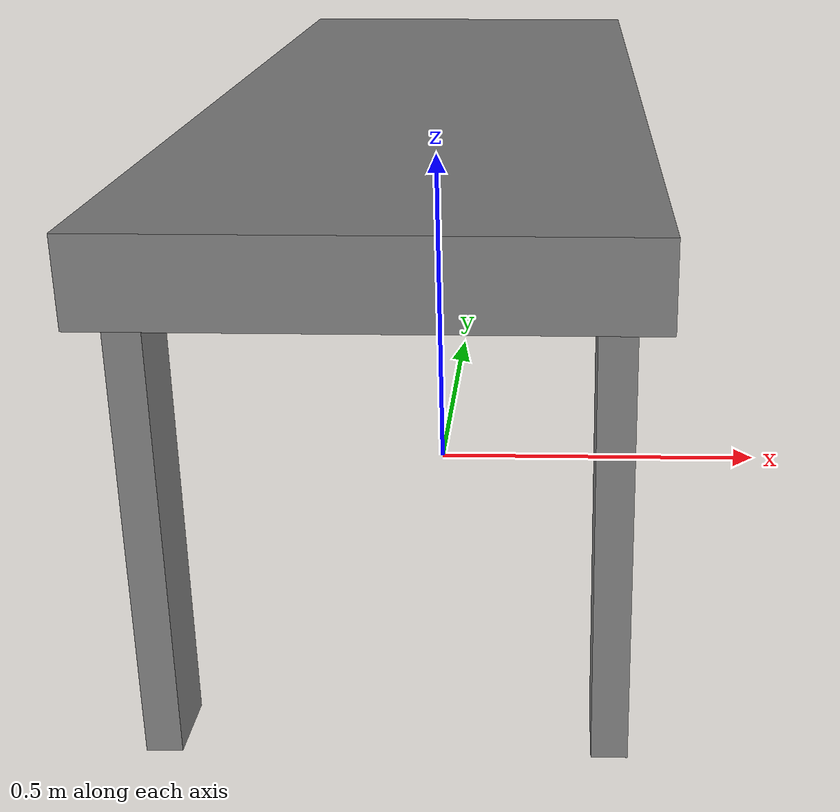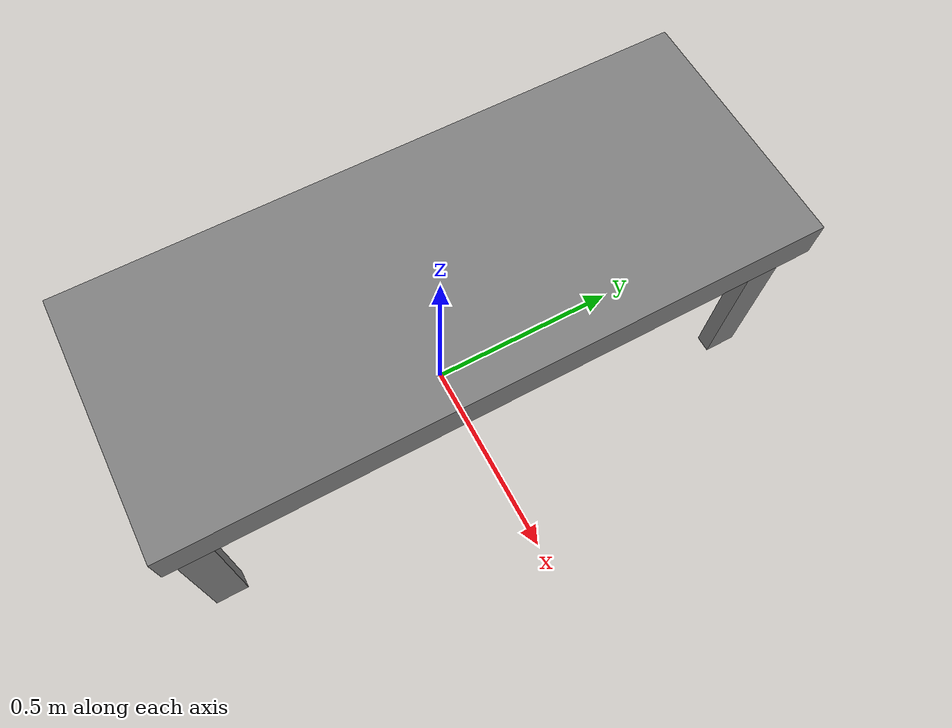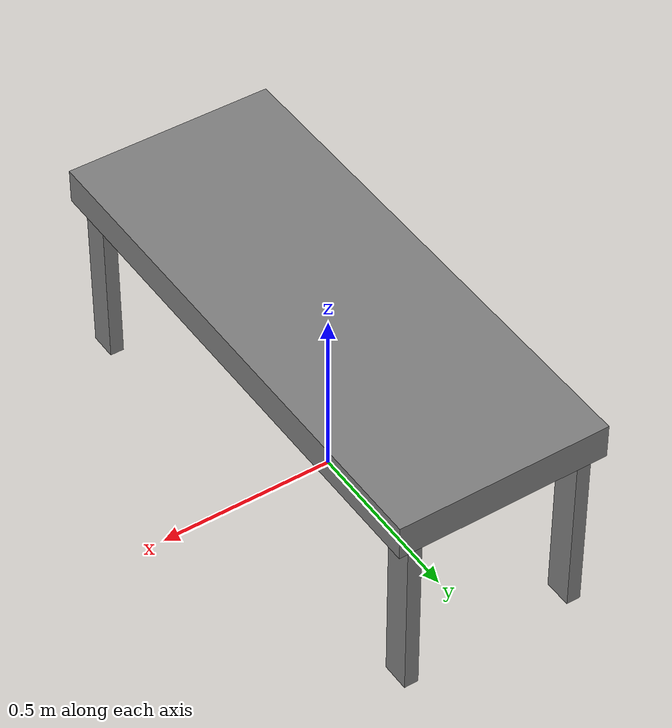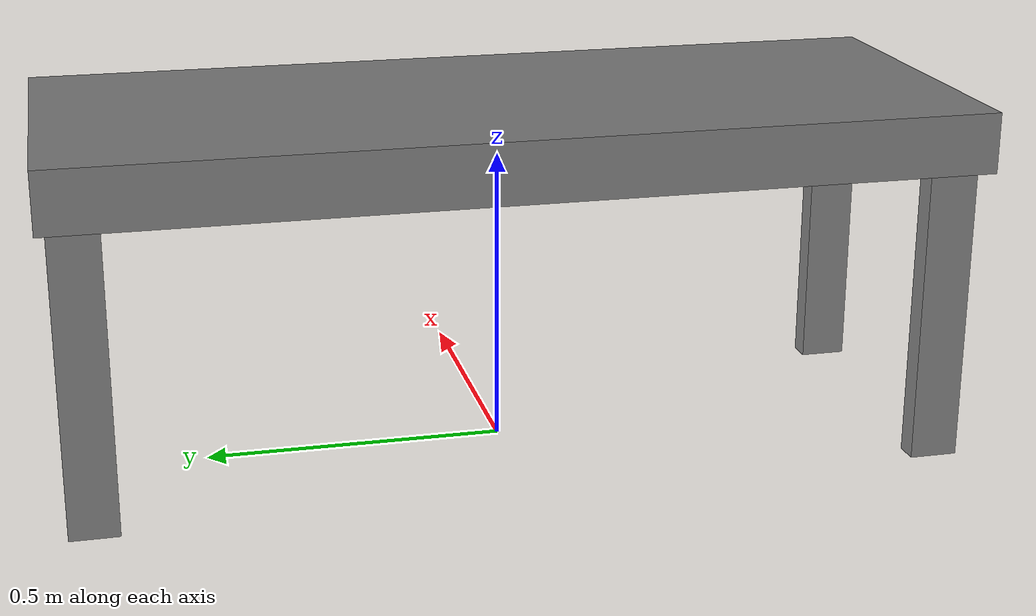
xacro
<?xml version="1.0"?>
<robot xmlns:xacro="http://www.ros.org/wiki/xacro" name="test_env.urdf.xacro">
  <xacro:arg name="origin.x" default="0"/>
  <xacro:arg name="origin.y" default="0"/>
  <xacro:arg name="origin.z" default="0"/>
  <xacro:property name="toolMass" value="0.1"/>
  <xacro:property name="xOffset" value="-0.5"/>
  <xacro:property name="toolLength" value="0.40"/>
  <xacro:property name="toolRadius" value="0.005"/>
  <xacro:property name="tableLength" value="0.6"/>
  <xacro:property name="tableWidth" value="1.5"/>
  <xacro:property name="tableHeight" value="0.6"/>
  <xacro:property name="torsoXDim" value="383.035"/>
  <xacro:property name="torsoYDim" value="248.966"/>
  <xacro:property name="torsoZDim" value="697.53"/>
  <xacro:property name="torsoScale" value="0.0015"/>

  <link name="world"/>

  <gazebo reference="world">
    <static>true</static>
    <turnGravityOff>true</turnGravityOff>
  </gazebo>

  <!-- Include all models -->
  <xacro:include filename="$(find fingers_controller)/models/table.urdf.xacro"/>

  <xacro:model_table name="operation_table"
                    parent="world"
                    length="${tableLength}"
                    width="${tableWidth}"
                    height="${tableHeight}"
                    plate_thickness="0.1"
                    color="grey">
    <origin xyz="${$(arg origin.x)-tableLength/2} ${$(arg origin.y)+tableWidth/2} ${tableHeight}" rpy="0 0 0"/>
  </xacro:model_table>

</robot>

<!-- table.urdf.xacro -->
<robot xmlns:xacro="http://www.ros.org/wiki/xacro">

<xacro:property name="leg_width" value="0.08" />
<xacro:property name="border_offset" value="0.055" />

<!-- conversions -->
<!-- I couldn't make the simulation work with realistic values, so I tweaked the conversion values -->
<xacro:property name="mm_to_m" value="0.001"/>
<xacro:property name="mm2_to_m2" value="0.000001"/>
<xacro:property name="gr_to_Kg" value="0.001"/>

<!-- not so negligible, otherwise simulation fails -->
<xacro:property name="table_mass" value="${40000*gr_to_Kg}"/>
<xacro:property name="table_inertia">
    <origin xyz="0 0 0"/>
    <mass value="${table_mass}"/>
    <inertia ixx="${table_mass * 10 * mm2_to_m2}" ixy="0.0" ixz="0.0" iyy="${table_mass * 10 * mm2_to_m2}" iyz="0.0" izz="${table_mass * 10 * mm2_to_m2}"/>
</xacro:property>

<material name="green">
    <color rgba="0.0 1.0 0.0 1.0"/>
</material>

<material name="red">
    <color rgba="1.0 0.0 0.0 1.0"/>
</material>

<material name="blue">
    <color rgba="0.0 0.0 1.0 1.0"/>
</material>

<material name="grey">
    <color rgba="0.5 0.5 0.5 1.0"/>
</material>

<xacro:macro name="table_leg" params="parent name *origin color">
    <joint name="${name}_joint" type="fixed">
        <xacro:insert_block name="origin"/>
        <parent link="${parent}" />
        <child link="${name}_link" />
    </joint>
    <link name="${name}_link">
        <inertial>
            <xacro:insert_block name="table_inertia"/>
        </inertial>
		<visual>
			<geometry>
				<box size="${leg_width/2} -${leg_width} ${height - plate_thickness}"/>
			</geometry>
			<material name="${color}"/>
		</visual>
		<collision>
			<geometry>
				<box size="${leg_width/2} -${leg_width} ${height - plate_thickness}"/>
			</geometry>
		</collision>
    </link>

    <gazebo reference="${name}_link">
    </gazebo>
</xacro:macro>

<xacro:macro name="model_table" params="parent name *origin length width height plate_thickness color">
    <joint name="${parent}_${name}_base_joint" type="fixed">
        <xacro:insert_block name="origin"/>
        <parent link="${parent}"/>
        <child link="${name}_plate_link"/>
    </joint>
    <link name="${name}_plate_link">
        <inertial>
            <xacro:insert_block name="table_inertia"/>
        </inertial>
        <visual>
            <origin xyz="${1/2 * length} ${-1/2 * width} ${-1/2 * plate_thickness}"/>
            <geometry>
                <box size="${length} ${width} ${plate_thickness}"/>
			</geometry>
            <material name="${color}">
            </material>
		</visual>
        <collision>
            <origin xyz="${1/2 * length} ${-1/2 * width} ${-1/2 * plate_thickness}"/>
            <geometry>
                <box size="${length} ${width} ${plate_thickness}"/>
            </geometry>
        </collision>
    </link>
    <xacro:table_leg parent="${name}_plate_link" name="${name}_leg_0" color="${color}">
        <origin xyz="${border_offset} -${border_offset} -${1/2 * (plate_thickness + height)}"/>
    </xacro:table_leg>
    <xacro:table_leg parent="${name}_plate_link" name="${name}_leg_1" color="${color}">
        <origin xyz="${length - border_offset} -${border_offset} -${1/2 * (plate_thickness + height)}"/>
    </xacro:table_leg>
    <xacro:table_leg parent="${name}_plate_link" name="${name}_leg_2" color="${color}">
        <origin xyz="${border_offset} -${width - border_offset} -${1/2 * (plate_thickness + height)}"/>
    </xacro:table_leg>
    <xacro:table_leg parent="${name}_plate_link" name="${name}_leg_3" color="${color}">
        <origin xyz="${length - border_offset} -${width - border_offset} -${1/2 * (plate_thickness + height)}"/>
    </xacro:table_leg>

    <gazebo reference="${name}_plate_link">
    </gazebo>

</xacro:macro>
</robot>
